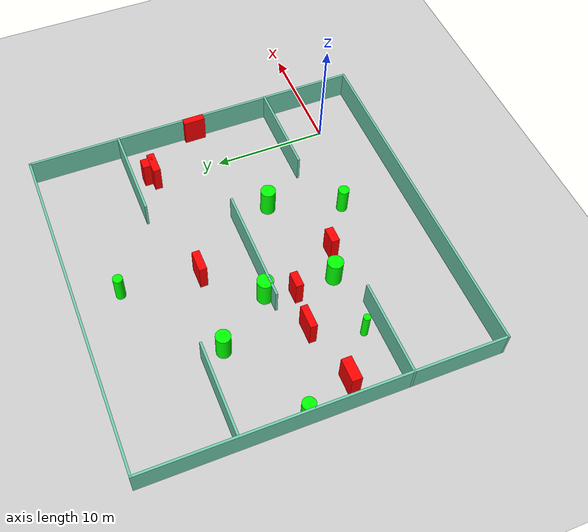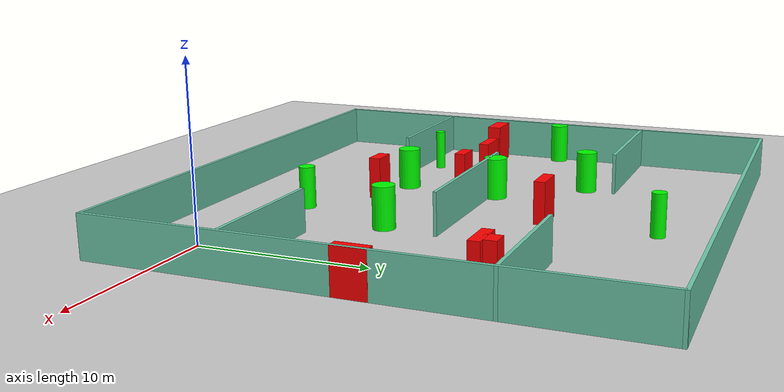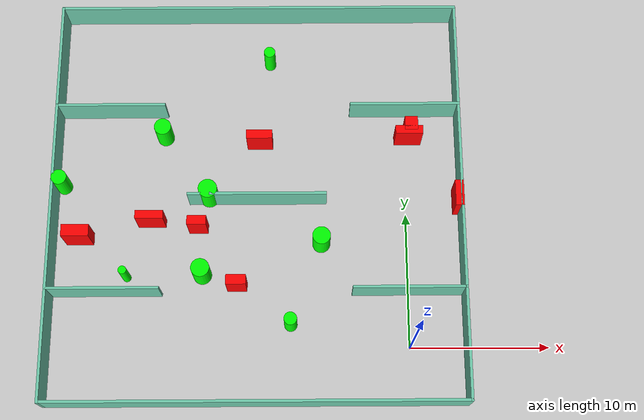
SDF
<sdf version="1.7">
 <world name="default">
  <light name="sun" type="directional">
   <pose>0 0 10 0 -0 0</pose>
   <diffuse>0.8 0.8 0.8 1</diffuse>
   <specular>0.2 0.2 0.2 1</specular>
   <attenuation>
    <range>1000</range>
    <constant>0.9</constant>
    <linear>0.01</linear>
    <quadratic>0.001</quadratic>
   </attenuation>
   <direction>-0.5 0.1 -0.9</direction>
   <spot><inner_angle>0</inner_angle><outer_angle>0</outer_angle><falloff>0</falloff></spot>
  </light>
  <model name="ground_plane">
   <static>1</static>
   <link name="link">
    <collision name="collision">
     <geometry><plane><normal>0 0 1</normal><size>100 100</size></plane></geometry>
     <surface>
      <contact><collide_bitmask>65535</collide_bitmask></contact>
      <friction><ode><mu>100</mu><mu2>50</mu2></ode></friction>
     </surface>
    </collision>
    <visual name="visual">
     <cast_shadows>0</cast_shadows>
     <geometry><plane><normal>0 0 1</normal><size>100 100</size></plane></geometry>
     <material>
      <script><uri>file://media/materials/scripts/gazebo.material</uri><name>Gazebo/Grey</name></script>
     </material>
    </visual>
   </link>
  </model>
  <gravity>0 0 -9.8</gravity>
  <magnetic_field>6e-06 2.3e-05 -4.2e-05</magnetic_field>
  <atmosphere type="adiabatic"/>
  <physics type="ode">
   <max_step_size>0.001</max_step_size>
   <real_time_factor>1</real_time_factor>
   <real_time_update_rate>1000</real_time_update_rate>
  </physics>
  <scene><ambient>0.4 0.4 0.4 1</ambient><background>0.7 0.7 0.7 1</background><shadows>1</shadows></scene>
  <spherical_coordinates>
   <surface_model>EARTH_WGS84</surface_model>
   <latitude_deg>0</latitude_deg>
   <longitude_deg>0</longitude_deg>
   <elevation>0</elevation>
   <heading_deg>0</heading_deg>
  </spherical_coordinates>
  <model name="my_base_walls">
   <link name="Wall_10">
    <collision name="Wall_10_Collision">
     <geometry><box><size>8.2 0.2 2.5</size></box></geometry>
     <pose>0 0 1.25 0 -0 0</pose>
    </collision>
    <visual name="Wall_10_Visual">
     <pose>0 0 1.25 0 -0 0</pose>
     <geometry><box><size>8.2 0.2 2.5</size></box></geometry>
     <material>
      <script><uri>file://media/materials/scripts/gazebo.material</uri><name>Gazebo/Grey</name></script>
      <ambient>0.435294 0.796078 0.67451 1</ambient>
     </material>
     <meta><layer>0</layer></meta>
    </visual>
    <pose>-11 -7 0 0 -0 0</pose>
   </link>
   <link name="Wall_12">
    <collision name="Wall_12_Collision">
     <geometry><box><size>8.2 0.2 2.5</size></box></geometry>
     <pose>0 0 1.25 0 -0 0</pose>
    </collision>
    <visual name="Wall_12_Visual">
     <pose>0 0 1.25 0 -0 0</pose>
     <geometry><box><size>8.2 0.2 2.5</size></box></geometry>
     <material>
      <script><uri>file://media/materials/scripts/gazebo.material</uri><name>Gazebo/Grey</name></script>
      <ambient>0.435294 0.796078 0.67451 1</ambient>
     </material>
     <meta><layer>0</layer></meta>
    </visual>
    <pose>-11 7 0 0 -0 0</pose>
   </link>
   <link name="Wall_14">
    <collision name="Wall_14_Collision">
     <geometry><box><size>8.2 0.2 2.5</size></box></geometry>
     <pose>0 0 1.25 0 -0 0</pose>
    </collision>
    <visual name="Wall_14_Visual">
     <pose>0 0 1.25 0 -0 0</pose>
     <geometry><box><size>8.2 0.2 2.5</size></box></geometry>
     <material>
      <script><uri>file://media/materials/scripts/gazebo.material</uri><name>Gazebo/Grey</name></script>
      <ambient>0.435294 0.796078 0.67451 1</ambient>
     </material>
     <meta><layer>0</layer></meta>
    </visual>
    <pose>11 7 0 0 -0 3.14159</pose>
   </link>
   <link name="Wall_16">
    <collision name="Wall_16_Collision">
     <geometry><box><size>10.2 0.2 2.5</size></box></geometry>
     <pose>0 0 1.25 0 -0 0</pose>
    </collision>
    <visual name="Wall_16_Visual">
     <pose>0 0 1.25 0 -0 0</pose>
     <geometry><box><size>10.2 0.2 2.5</size></box></geometry>
     <material>
      <script><uri>file://media/materials/scripts/gazebo.material</uri><name>Gazebo/Grey</name></script>
      <ambient>0.435294 0.796078 0.67451 1</ambient>
     </material>
     <meta><layer>0</layer></meta>
    </visual>
    <pose>0 0 0 0 -0 3.14159</pose>
   </link>
   <link name="Wall_2">
    <collision name="Wall_2_Collision">
     <geometry><box><size>30.2 0.2 2.5</size></box></geometry>
     <pose>0 0 1.25 0 -0 0</pose>
    </collision>
    <visual name="Wall_2_Visual">
     <pose>0 0 1.25 0 -0 0</pose>
     <geometry><box><size>30.2 0.2 2.5</size></box></geometry>
     <material>
      <script><uri>file://media/materials/scripts/gazebo.material</uri><name>Gazebo/Grey</name></script>
      <ambient>0.435294 0.796078 0.67451 1</ambient>
     </material>
     <meta><layer>0</layer></meta>
    </visual>
    <pose>0 -15 0 0 -0 3.14159</pose>
   </link>
   <link name="Wall_3">
    <collision name="Wall_3_Collision">
     <geometry><box><size>30.2 0.2 2.5</size></box></geometry>
     <pose>0 0 1.25 0 -0 0</pose>
    </collision>
    <visual name="Wall_3_Visual">
     <pose>0 0 1.25 0 -0 0</pose>
     <geometry><box><size>30.2 0.2 2.5</size></box></geometry>
     <material>
      <script><uri>file://media/materials/scripts/gazebo.material</uri><name>Gazebo/Grey</name></script>
      <ambient>0.435294 0.796078 0.67451 1</ambient>
     </material>
     <meta><layer>0</layer></meta>
    </visual>
    <pose>-15 0 0 0 -0 1.5708</pose>
   </link>
   <link name="Wall_4">
    <collision name="Wall_4_Collision">
     <geometry><box><size>30.2 0.2 2.5</size></box></geometry>
     <pose>0 0 1.25 0 -0 0</pose>
    </collision>
    <visual name="Wall_4_Visual">
     <pose>0 0 1.25 0 -0 0</pose>
     <geometry><box><size>30.2 0.2 2.5</size></box></geometry>
     <material>
      <script><uri>file://media/materials/scripts/gazebo.material</uri><name>Gazebo/Grey</name></script>
      <ambient>0.435294 0.796078 0.67451 1</ambient>
     </material>
     <meta><layer>0</layer></meta>
    </visual>
    <pose>0 15 0 0 -0 0</pose>
   </link>
   <link name="Wall_6">
    <collision name="Wall_6_Collision">
     <geometry><box><size>30.2 0.2 2.5</size></box></geometry>
     <pose>0 0 1.25 0 -0 0</pose>
    </collision>
    <visual name="Wall_6_Visual">
     <pose>0 0 1.25 0 -0 0</pose>
     <geometry><box><size>30.2 0.2 2.5</size></box></geometry>
     <material>
      <script><uri>file://media/materials/scripts/gazebo.material</uri><name>Gazebo/Grey</name></script>
      <ambient>0.435294 0.796078 0.67451 1</ambient>
     </material>
     <meta><layer>0</layer></meta>
    </visual>
    <pose>15 0 0 0 -0 1.5708</pose>
   </link>
   <link name="Wall_8">
    <collision name="Wall_8_Collision">
     <geometry><box><size>8.2 0.2 2.5</size></box></geometry>
     <pose>0 0 1.25 0 -0 0</pose>
    </collision>
    <visual name="Wall_8_Visual">
     <pose>0 0 1.25 0 -0 0</pose>
     <geometry><box><size>8.2 0.2 2.5</size></box></geometry>
     <material>
      <script><uri>file://media/materials/scripts/gazebo.material</uri><name>Gazebo/Grey</name></script>
      <ambient>0.435294 0.796078 0.67451 1</ambient>
     </material>
     <meta><layer>0</layer></meta>
    </visual>
    <pose>11 -7 0 0 -0 3.14159</pose>
   </link>
   <static>1</static>
   <pose>-11 11 0 0 -0 0</pose>
  </model>
  <model name="cylinder1">
   <static>1</static>
   <link name="link">
    <inertial>
     <mass>1</mass>
     <inertia><ixx>0.5</ixx><ixy>0</ixy><ixz>0</ixz><iyy>0.5</iyy><iyz>0</iyz><izz>1</izz></inertia>
    </inertial>
    <collision name="collision">
     <geometry><cylinder><radius>0.6258227309169477</radius><length>2.5</length></cylinder></geometry>
    </collision>
    <visual name="visual">
     <geometry><cylinder><radius>0.6258227309169477</radius><length>2.5</length></cylinder></geometry>
     <material>
      <ambient>0 1 0 1</ambient>
      <diffuse>0 1 0 1</diffuse>
      <specular>0.1 0.1 0.1 1</specular>
      <emissive>0 0 0 0</emissive>
     </material>
    </visual>
   </link>
   <pose>-18.049153087687053 16.228793014099974 1.25 0 0 0</pose>
  </model>
  <model name="cylinder2">
   <static>1</static>
   <link name="link">
    <inertial>
     <mass>1</mass>
     <inertia><ixx>0.5</ixx><ixy>0</ixy><ixz>0</ixz><iyy>0.5</iyy><iyz>0</iyz><izz>1</izz></inertia>
    </inertial>
    <collision name="collision">
     <geometry><cylinder><radius>0.4202777826248713</radius><length>2.5</length></cylinder></geometry>
    </collision>
    <visual name="visual">
     <geometry><cylinder><radius>0.4202777826248713</radius><length>2.5</length></cylinder></geometry>
     <material>
      <ambient>0 1 0 1</ambient>
      <diffuse>0 1 0 1</diffuse>
      <specular>0.1 0.1 0.1 1</specular>
      <emissive>0 0 0 0</emissive>
     </material>
    </visual>
   </link>
   <pose>-10.13568971080468 22.242431413839086 1.25 0 0 0</pose>
  </model>
  <model name="cylinder3">
   <static>1</static>
   <link name="link">
    <inertial>
     <mass>1</mass>
     <inertia><ixx>0.5</ixx><ixy>0</ixy><ixz>0</ixz><iyy>0.5</iyy><iyz>0</iyz><izz>1</izz></inertia>
    </inertial>
    <collision name="collision">
     <geometry><cylinder><radius>0.47217814680466474</radius><length>2.5</length></cylinder></geometry>
    </collision>
    <visual name="visual">
     <geometry><cylinder><radius>0.47217814680466474</radius><length>2.5</length></cylinder></geometry>
     <material>
      <ambient>0 1 0 1</ambient>
      <diffuse>0 1 0 1</diffuse>
      <specular>0.1 0.1 0.1 1</specular>
      <emissive>0 0 0 0</emissive>
     </material>
    </visual>
   </link>
   <pose>-8.548521239758276 1.7296074852635357 1.25 0 0 0</pose>
  </model>
  <model name="cylinder4">
   <static>1</static>
   <link name="link">
    <inertial>
     <mass>1</mass>
     <inertia><ixx>0.5</ixx><ixy>0</ixy><ixz>0</ixz><iyy>0.5</iyy><iyz>0</iyz><izz>1</izz></inertia>
    </inertial>
    <collision name="collision">
     <geometry><cylinder><radius>0.30198372805287155</radius><length>2.5</length></cylinder></geometry>
    </collision>
    <visual name="visual">
     <geometry><cylinder><radius>0.30198372805287155</radius><length>2.5</length></cylinder></geometry>
     <material>
      <ambient>0 1 0 1</ambient>
      <diffuse>0 1 0 1</diffuse>
      <specular>0.1 0.1 0.1 1</specular>
      <emissive>0 0 0 0</emissive>
     </material>
    </visual>
   </link>
   <pose>-20.55221569042758 5.2953319622383255 1.25 0 0 0</pose>
  </model>
  <model name="cylinder5">
   <static>1</static>
   <link name="link">
    <inertial>
     <mass>1</mass>
     <inertia><ixx>0.5</ixx><ixy>0</ixy><ixz>0</ixz><iyy>0.5</iyy><iyz>0</iyz><izz>1</izz></inertia>
    </inertial>
    <collision name="collision">
     <geometry><cylinder><radius>0.6719768449025736</radius><length>2.5</length></cylinder></geometry>
    </collision>
    <visual name="visual">
     <geometry><cylinder><radius>0.6719768449025736</radius><length>2.5</length></cylinder></geometry>
     <material>
      <ambient>0 1 0 1</ambient>
      <diffuse>0 1 0 1</diffuse>
      <specular>0.1 0.1 0.1 1</specular>
      <emissive>0 0 0 0</emissive>
     </material>
    </visual>
   </link>
   <pose>-15.013842017397055 5.443340993139763 1.25 0 0 0</pose>
  </model>
  <model name="cylinder6">
   <static>1</static>
   <link name="link">
    <inertial>
     <mass>1</mass>
     <inertia><ixx>0.5</ixx><ixy>0</ixy><ixz>0</ixz><iyy>0.5</iyy><iyz>0</iyz><izz>1</izz></inertia>
    </inertial>
    <collision name="collision">
     <geometry><cylinder><radius>0.6957083134005706</radius><length>2.5</length></cylinder></geometry>
    </collision>
    <visual name="visual">
     <geometry><cylinder><radius>0.6957083134005706</radius><length>2.5</length></cylinder></geometry>
     <material>
      <ambient>0 1 0 1</ambient>
      <diffuse>0 1 0 1</diffuse>
      <specular>0.1 0.1 0.1 1</specular>
      <emissive>0 0 0 0</emissive>
     </material>
    </visual>
   </link>
   <pose>-14.60746749381376 11.39075316635407 1.25 0 0 0</pose>
  </model>
  <model name="cylinder7">
   <static>1</static>
   <link name="link">
    <inertial>
     <mass>1</mass>
     <inertia><ixx>0.5</ixx><ixy>0</ixy><ixz>0</ixz><iyy>0.5</iyy><iyz>0</iyz><izz>1</izz></inertia>
    </inertial>
    <collision name="collision">
     <geometry><cylinder><radius>0.5684613068282607</radius><length>2.5</length></cylinder></geometry>
    </collision>
    <visual name="visual">
     <geometry><cylinder><radius>0.5684613068282607</radius><length>2.5</length></cylinder></geometry>
     <material>
      <ambient>0 1 0 1</ambient>
      <diffuse>0 1 0 1</diffuse>
      <specular>0.1 0.1 0.1 1</specular>
      <emissive>0 0 0 0</emissive>
     </material>
    </visual>
   </link>
   <pose>-25.52525263485526 12.321562149279195 1.25 0 0 0</pose>
  </model>
  <model name="cylinder8">
   <static>1</static>
   <link name="link">
    <inertial>
     <mass>1</mass>
     <inertia><ixx>0.5</ixx><ixy>0</ixy><ixz>0</ixz><iyy>0.5</iyy><iyz>0</iyz><izz>1</izz></inertia>
    </inertial>
    <collision name="collision">
     <geometry><cylinder><radius>0.6523923952035848</radius><length>2.5</length></cylinder></geometry>
    </collision>
    <visual name="visual">
     <geometry><cylinder><radius>0.6523923952035848</radius><length>2.5</length></cylinder></geometry>
     <material>
      <ambient>0 1 0 1</ambient>
      <diffuse>0 1 0 1</diffuse>
      <specular>0.1 0.1 0.1 1</specular>
      <emissive>0 0 0 0</emissive>
     </material>
    </visual>
   </link>
   <pose>-6.298988691306214 7.788591960044565 1.25 0 0 0</pose>
  </model>
  <model name="box1">
   <static>1</static>
   <link name="link">
    <inertial>
     <mass>1</mass>
     <inertia><ixx>0.083</ixx><ixy>0</ixy><ixz>0</ixz><iyy>0.083</iyy><iyz>0</iyz><izz>0.083</izz></inertia>
    </inertial>
    <collision name="collision">
     <geometry><box><size>0.6187046012261807 1.9122097788229526 2.5</size></box></geometry>
    </collision>
    <visual name="visual">
     <geometry><box><size>0.6187046012261807 1.9122097788229526 2.5</size></box></geometry>
     <material>
      <ambient>1 0 0 1</ambient>
      <diffuse>1 0 0 1</diffuse>
      <specular>0.1 0.1 0.1 1</specular>
      <emissive>0 0 0 0</emissive>
     </material>
    </visual>
    <sensor name="my_contact" type="contact">
     <contact><collision>box_collision</collision><topic>__default_topic__</topic></contact>
    </sensor>
   </link>
   <pose>3.805314238364055 11.003651125784142 1.25 0 0 0</pose>
  </model>
  <model name="box2">
   <static>1</static>
   <link name="link">
    <inertial>
     <mass>1</mass>
     <inertia><ixx>0.083</ixx><ixy>0</ixy><ixz>0</ixz><iyy>0.083</iyy><iyz>0</iyz><izz>0.083</izz></inertia>
    </inertial>
    <collision name="collision">
     <geometry><box><size>1.901944664967554 0.6692397174629543 2.5</size></box></geometry>
    </collision>
    <visual name="visual">
     <geometry><box><size>1.901944664967554 0.6692397174629543 2.5</size></box></geometry>
     <material>
      <ambient>1 0 0 1</ambient>
      <diffuse>1 0 0 1</diffuse>
      <specular>0.1 0.1 0.1 1</specular>
      <emissive>0 0 0 0</emissive>
     </material>
    </visual>
    <sensor name="my_contact" type="contact">
     <contact><collision>box_collision</collision><topic>__default_topic__</topic></contact>
    </sensor>
   </link>
   <pose>-10.864999337830358 15.616603498016314 1.25 0 0 0</pose>
  </model>
  <model name="box3">
   <static>1</static>
   <link name="link">
    <inertial>
     <mass>1</mass>
     <inertia><ixx>0.083</ixx><ixy>0</ixy><ixz>0</ixz><iyy>0.083</iyy><iyz>0</iyz><izz>0.083</izz></inertia>
    </inertial>
    <collision name="collision">
     <geometry><box><size>1.404020132324943 0.6525006810035042 2.5</size></box></geometry>
    </collision>
    <visual name="visual">
     <geometry><box><size>1.404020132324943 0.6525006810035042 2.5</size></box></geometry>
     <material>
      <ambient>1 0 0 1</ambient>
      <diffuse>1 0 0 1</diffuse>
      <specular>0.1 0.1 0.1 1</specular>
      <emissive>0 0 0 0</emissive>
     </material>
    </visual>
    <sensor name="my_contact" type="contact">
     <contact><collision>box_collision</collision><topic>__default_topic__</topic></contact>
    </sensor>
   </link>
   <pose>-15.360480173530789 8.993173226654049 1.25 0 0 0</pose>
  </model>
  <model name="box4">
   <static>1</static>
   <link name="link">
    <inertial>
     <mass>1</mass>
     <inertia><ixx>0.083</ixx><ixy>0</ixy><ixz>0</ixz><iyy>0.083</iyy><iyz>0</iyz><izz>0.083</izz></inertia>
    </inertial>
    <collision name="collision">
     <geometry><box><size>1.4315401167825794 0.7101421546699849 2.5</size></box></geometry>
    </collision>
    <visual name="visual">
     <geometry><box><size>1.4315401167825794 0.7101421546699849 2.5</size></box></geometry>
     <material>
      <ambient>1 0 0 1</ambient>
      <diffuse>1 0 0 1</diffuse>
      <specular>0.1 0.1 0.1 1</specular>
      <emissive>0 0 0 0</emissive>
     </material>
    </visual>
    <sensor name="my_contact" type="contact">
     <contact><collision>box_collision</collision><topic>__default_topic__</topic></contact>
    </sensor>
   </link>
   <pose>-12.451520726811337 4.576711532840893 1.25 0 0 0</pose>
  </model>
  <model name="box5">
   <static>1</static>
   <link name="link">
    <inertial>
     <mass>1</mass>
     <inertia><ixx>0.083</ixx><ixy>0</ixy><ixz>0</ixz><iyy>0.083</iyy><iyz>0</iyz><izz>0.083</izz></inertia>
    </inertial>
    <collision name="collision">
     <geometry><box><size>2.0361228698497675 0.6029867130206068 2.5</size></box></geometry>
    </collision>
    <visual name="visual">
     <geometry><box><size>2.0361228698497675 0.6029867130206068 2.5</size></box></geometry>
     <material>
      <ambient>1 0 0 1</ambient>
      <diffuse>1 0 0 1</diffuse>
      <specular>0.1 0.1 0.1 1</specular>
      <emissive>0 0 0 0</emissive>
     </material>
    </visual>
    <sensor name="my_contact" type="contact">
     <contact><collision>box_collision</collision><topic>__default_topic__</topic></contact>
    </sensor>
   </link>
   <pose>-18.815018470849054 9.432920084322847 1.25 0 0 0</pose>
  </model>
  <model name="box6">
   <static>1</static>
   <link name="link">
    <inertial>
     <mass>1</mass>
     <inertia><ixx>0.083</ixx><ixy>0</ixy><ixz>0</ixz><iyy>0.083</iyy><iyz>0</iyz><izz>0.083</izz></inertia>
    </inertial>
    <collision name="collision">
     <geometry><box><size>2.0193985081516397 0.6567119747375223 2.5</size></box></geometry>
    </collision>
    <visual name="visual">
     <geometry><box><size>2.0193985081516397 0.6567119747375223 2.5</size></box></geometry>
     <material>
      <ambient>1 0 0 1</ambient>
      <diffuse>1 0 0 1</diffuse>
      <specular>0.1 0.1 0.1 1</specular>
      <emissive>0 0 0 0</emissive>
     </material>
    </visual>
    <sensor name="my_contact" type="contact">
     <contact><collision>box_collision</collision><topic>__default_topic__</topic></contact>
    </sensor>
   </link>
   <pose>0.2795149124380032 15.926915425902617 1.25 0 0 0</pose>
  </model>
  <model name="box7">
   <static>1</static>
   <link name="link">
    <inertial>
     <mass>1</mass>
     <inertia><ixx>0.083</ixx><ixy>0</ixy><ixz>0</ixz><iyy>0.083</iyy><iyz>0</iyz><izz>0.083</izz></inertia>
    </inertial>
    <collision name="collision">
     <geometry><box><size>0.9548584604627122 1.0357534577736953 2.5</size></box></geometry>
    </collision>
    <visual name="visual">
     <geometry><box><size>0.9548584604627122 1.0357534577736953 2.5</size></box></geometry>
     <material>
      <ambient>1 0 0 1</ambient>
      <diffuse>1 0 0 1</diffuse>
      <specular>0.1 0.1 0.1 1</specular>
      <emissive>0 0 0 0</emissive>
     </material>
    </visual>
    <sensor name="my_contact" type="contact">
     <contact><collision>box_collision</collision><topic>__default_topic__</topic></contact>
    </sensor>
   </link>
   <pose>0.45425785974612154 16.432758127404494 1.25 0 0 0</pose>
  </model>
  <model name="box8">
   <static>1</static>
   <link name="link">
    <inertial>
     <mass>1</mass>
     <inertia><ixx>0.083</ixx><ixy>0</ixy><ixz>0</ixz><iyy>0.083</iyy><iyz>0</iyz><izz>0.083</izz></inertia>
    </inertial>
    <collision name="collision">
     <geometry><box><size>1.9953638404470675 0.8677387757542627 2.5</size></box></geometry>
    </collision>
    <visual name="visual">
     <geometry><box><size>1.9953638404470675 0.8677387757542627 2.5</size></box></geometry>
     <material>
      <ambient>1 0 0 1</ambient>
      <diffuse>1 0 0 1</diffuse>
      <specular>0.1 0.1 0.1 1</specular>
      <emissive>0 0 0 0</emissive>
     </material>
    </visual>
    <sensor name="my_contact" type="contact">
     <contact><collision>box_collision</collision><topic>__default_topic__</topic></contact>
    </sensor>
   </link>
   <pose>-24.11398335510734 8.261446896460265 1.25 0 0 0</pose>
  </model>
 </world>
</sdf>
